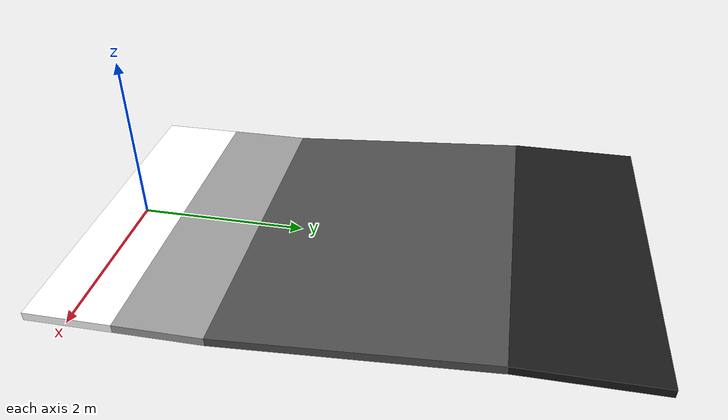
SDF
<?xml version="1.0" ?>
<sdf version="1.9">
  <model name="ground">
    <static>true</static>

    <!-- LOWER AREA (nest + cache) -->
    <link name="link_lower_area">
      <pose>0 0 0 0 0 0</pose>

      <visual name="nest_area">
        <pose>0 0 0 0 0 0</pose>
        <geometry>
          <box>
            <size>4.0 1.0 0.1</size>
          </box>
        </geometry>
        <material>
          <diffuse>1 1 1 1</diffuse>
        </material>
      </visual>

      <visual name="cache_area">
        <pose>0 1.0 0 0 0 0</pose>
        <geometry>
          <box>
            <size>4.0 1.0 0.1</size>
          </box>
        </geometry>
        <material>
          <diffuse>0.6 0.6 0.6 1</diffuse>
        </material>
      </visual>

      <collision name="collision_lower_area">
        <pose>0 0.5 0 0 0 0</pose>
        <geometry>
          <box>
            <size>4.0 2.0 0.1</size>
          </box>
        </geometry>
      </collision>
    </link>

    <!-- SLOPE (allungata a 3.0 m) -->
    <link name="link_slope">
      <!-- Centro della slope posto a metà della sua lunghezza: 3.0 / 2 = 1.5 -->
      <pose relative_to="joint_cache_slope">0 1.5 0 0 0 0</pose>

      <visual name="visual_slope">
        <geometry>
          <box>
            <!-- Lx Ly Lz: Ly = 3.0 -->
            <size>4.0 3.0 0.1</size>
          </box>
        </geometry>
        <material>
          <diffuse>0.3 0.3 0.3 1</diffuse>
        </material>
      </visual>

      <collision name="collision_slope">
        <geometry>
          <box>
            <size>4.0 3.0 0.1</size>
          </box>
        </geometry>
      </collision>
    </link>

    <!-- SOURCE AREA -->
    <link name="link_source_area">
      <!-- Centro della source (1.5 m di lunghezza) posto a +0.75 dal giunto con la slope -->
      <pose relative_to="joint_slope_source">0 0.75 -0.05 0 0 0</pose>

      <visual name="visual_source_area">
        <geometry>
          <box>
            <size>4.0 1.5 0.1</size>
          </box>
        </geometry>
        <material>
          <diffuse>0.1 0.1 0.1 1</diffuse>
        </material>
      </visual>

      <collision name="collision_source_area">
        <geometry>
          <box>
            <size>4.0 1.5 0.1</size>
          </box>
        </geometry>
      </collision>
    </link>

    <!-- JOINTS -->
    <joint name="joint_cache_slope" type="fixed">
      <parent>link_lower_area</parent>
      <child>link_slope</child>
      <!-- Posizione di contatto tra cache e inizio slope, con leggero roll per pendenza -->
      <pose relative_to="link_lower_area">0 1.5 0 0.07 0 0</pose>
      <axis>
        <xyz>1 0 0</xyz>
      </axis>
    </joint>

	<joint name="joint_slope_source" type="fixed">
	<parent>link_slope</parent>
	<child>link_source_area</child>
	<!-- y esatto 1.5 e z alzato di 0.05246 m -->
	<pose relative_to="link_slope">0 1.5 0.05246 -0.07 0 0</pose>
	<axis>
		<xyz>1 0 0</xyz>
	</axis>
	</joint>

  </model>
</sdf>
